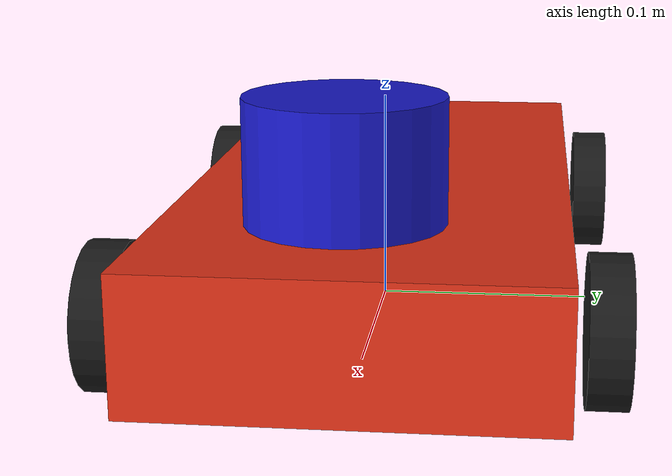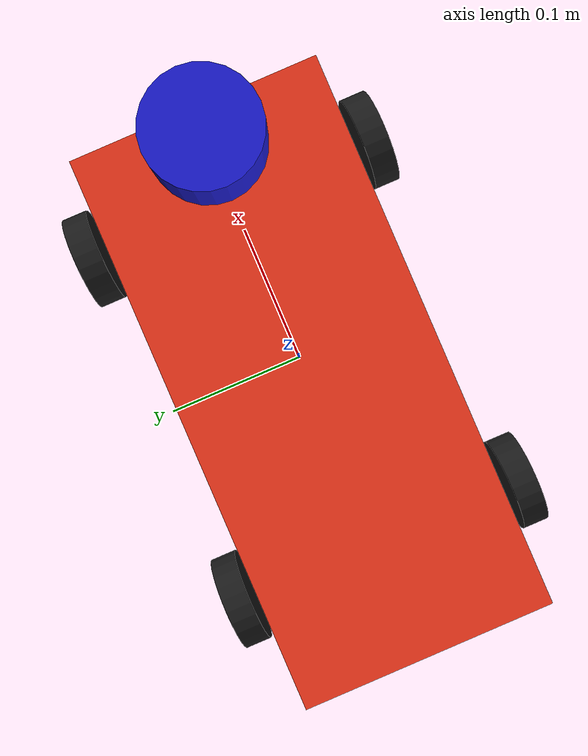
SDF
<?xml version="1.0" ?>
<sdf version="1.5">
  <!-- Lead car: teleported by set_entity_state, gravity disabled -->
  <model name="lead_car">
    <static>false</static>
    <link name="body">
      <gravity>false</gravity>
      <inertial>
        <mass>0.1</mass>
        <inertia>
          <ixx>0.001</ixx><ixy>0</ixy><ixz>0</ixz>
          <iyy>0.001</iyy><iyz>0</iyz><izz>0.001</izz>
        </inertia>
      </inertial>

      <!-- Chassis (red) -->
      <collision name="chassis_col">
        <pose>-0.02 0 0.03 0 0 0</pose>
        <geometry><box><size>0.40 0.18 0.06</size></box></geometry>
      </collision>
      <visual name="chassis">
        <pose>-0.02 0 0.03 0 0 0</pose>
        <geometry><box><size>0.40 0.18 0.06</size></box></geometry>
        <material>
          <ambient>0.9 0.2 0.1 1.0</ambient>
          <diffuse>0.9 0.2 0.1 1.0</diffuse>
        </material>
      </visual>

      <!-- Wheels -->
      <visual name="wfl">
        <pose>0.12 0.105 0.023 -1.57 0 0</pose>
        <geometry><cylinder><radius>0.033</radius><length>0.018</length></cylinder></geometry>
        <material><ambient>0.1 0.1 0.1 1</ambient><diffuse>0.1 0.1 0.1 1</diffuse></material>
      </visual>
      <visual name="wfr">
        <pose>0.12 -0.105 0.023 -1.57 0 0</pose>
        <geometry><cylinder><radius>0.033</radius><length>0.018</length></cylinder></geometry>
        <material><ambient>0.1 0.1 0.1 1</ambient><diffuse>0.1 0.1 0.1 1</diffuse></material>
      </visual>
      <visual name="wrl">
        <pose>-0.14 0.105 0.023 -1.57 0 0</pose>
        <geometry><cylinder><radius>0.033</radius><length>0.018</length></cylinder></geometry>
        <material><ambient>0.1 0.1 0.1 1</ambient><diffuse>0.1 0.1 0.1 1</diffuse></material>
      </visual>
      <visual name="wrr">
        <pose>-0.14 -0.105 0.023 -1.57 0 0</pose>
        <geometry><cylinder><radius>0.033</radius><length>0.018</length></cylinder></geometry>
        <material><ambient>0.1 0.1 0.1 1</ambient><diffuse>0.1 0.1 0.1 1</diffuse></material>
      </visual>

      <!-- LiDAR Visual -->
      <visual name="lidar_visual">
        <pose>0.15 0 0.1 0 0 0</pose>
        <geometry><cylinder><radius>0.04</radius><length>0.05</length></cylinder></geometry>
        <material><ambient>0.1 0.1 0.8 1</ambient><diffuse>0.1 0.1 0.8 1</diffuse></material>
      </visual>

      <!-- LiDAR Sensor -->
      <sensor name="lidar" type="ray">
        <pose>0.15 0 0.1 0 0 0</pose>
        <always_on>true</always_on>
        <visualize>false</visualize>
        <update_rate>20.0</update_rate>
        <ray>
          <scan>
            <horizontal>
              <samples>1080</samples>
              <resolution>1.0</resolution>
              <min_angle>-2.356</min_angle>
              <max_angle>2.356</max_angle>
            </horizontal>
          </scan>
          <range>
            <min>0.12</min>
            <max>10.0</max>
            <resolution>0.01</resolution>
          </range>
          <noise>
            <type>gaussian</type>
            <mean>0.0</mean>
            <stddev>0.01</stddev>
          </noise>
        </ray>
        <plugin name="scan" filename="libgazebo_ros_ray_sensor.so">
          <ros>
            <namespace>lead</namespace>
            <remapping>~/out:=scan</remapping>
          </ros>
          <output_type>sensor_msgs/LaserScan</output_type>
          <frame_name>body</frame_name>
        </plugin>
      </sensor>
    </link>

    <plugin name="object_controller" filename="libgazebo_ros_planar_move.so">
      <ros>
        <namespace>lead</namespace>
        <remapping>cmd_vel:=cmd_vel</remapping>
        <remapping>odom:=odom</remapping>
      </ros>
      <update_rate>100.0</update_rate>
      <publish_rate>100.0</publish_rate>
      <publish_odom>true</publish_odom>
      <publish_odom_tf>true</publish_odom_tf>
      <odometry_frame>odom</odometry_frame>
      <robot_base_frame>body</robot_base_frame>
    </plugin>
  </model>
</sdf>
